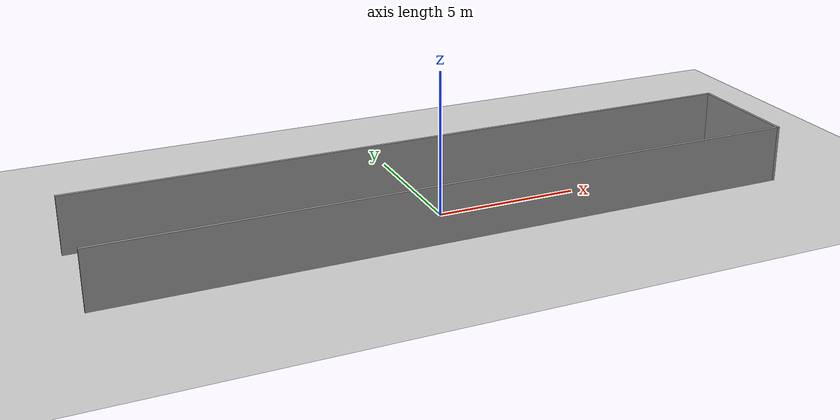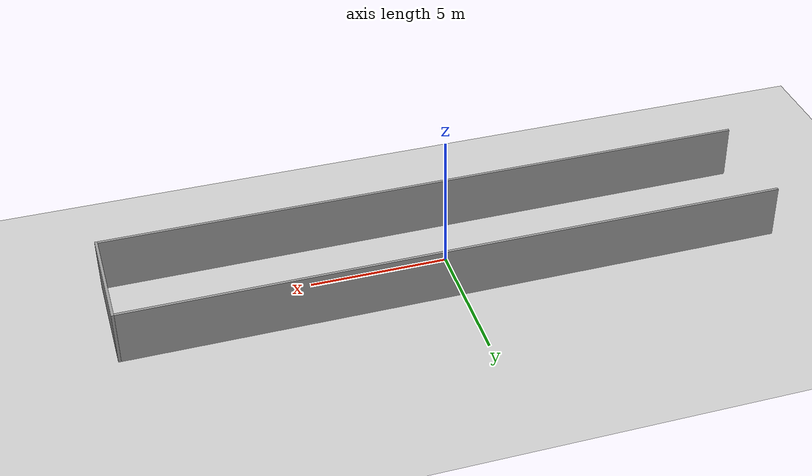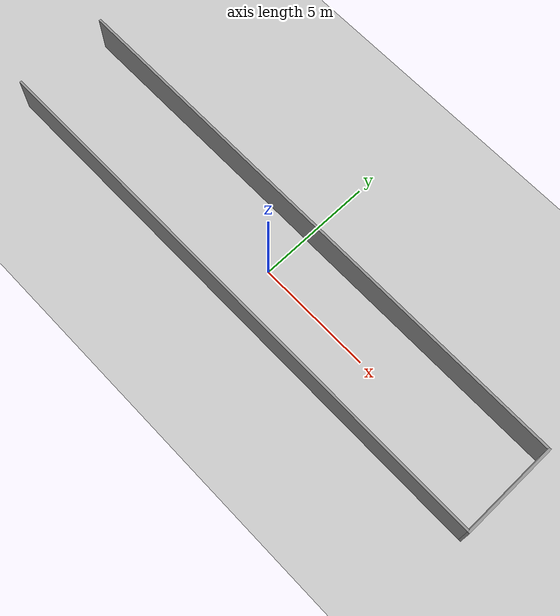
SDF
<sdf version='1.6'>
  <world name='default'>
    <include>
      <uri>model://ground_plane</uri>
    </include>

    <include>
      <uri>model://sun</uri>
    </include>

    <model name='white-wall'>
      <pose frame=''>0 0 0 0 0 0</pose>

      <link name='Wall_0'>
        <collision name='Wall_0_Collision'>
          <geometry>
            <box>
              <size>24 0.1 2</size>
            </box>
          </geometry>
          <pose frame=''>0 0 0 0 -0 0</pose>
          <max_contacts>10</max_contacts>
        </collision>
        <visual name='Wall_0_Visual'>
          <pose frame=''>0 0 0 0 -0 0</pose>
          <geometry>
            <box>
              <size>24 0.1 2</size>
            </box>
          </geometry>
          <material>
            <script>
              <uri>file://media/materials/scripts/gazebo.material</uri>
              <name>Gazebo/Grey</name>
            </script>
            <ambient>1 1 1 1</ambient>
          </material>
          <meta>
            <layer>0</layer>
          </meta>
        </visual>
        <pose frame=''>0 -2.05 1 0 -0 0</pose>
      </link>

      <link name='Wall_1'>
        <collision name='Wall_1_Collision'>
          <geometry>
            <box>
              <size>24 0.1 2</size>
            </box>
          </geometry>
          <pose frame=''>0 0 0 0 -0 0</pose>
          <max_contacts>10</max_contacts>
        </collision>
        <visual name='Wall_1_Visual'>
          <pose frame=''>0 0 0 0 -0 0</pose>
          <geometry>
            <box>
              <size>24 0.1 2</size>
            </box>
          </geometry>
          <material>
            <script>
              <uri>file://media/materials/scripts/gazebo.material</uri>
              <name>Gazebo/Grey</name>
            </script>
            <ambient>1 1 1 1</ambient>
          </material>
          <meta>
            <layer>0</layer>
          </meta>
        </visual>
        <pose frame=''>0 2.05 1 0 -0 0</pose>
      </link>

      <link name='Wall_2'>
        <collision name='Wall_2_Collision'>
          <geometry>
            <box>
              <size>0.1 4.2 2</size>
            </box>
          </geometry>
          <pose frame=''>0 0 0 0 -0 0</pose>
          <max_contacts>10</max_contacts>
        </collision>
        <visual name='Wall_2_Visual'>
          <pose frame=''>0 0 0 0 -0 0</pose>
          <geometry>
            <box>
              <size>0.1 4.2 2</size>
            </box>
          </geometry>
          <material>
            <script>
              <uri>file://media/materials/scripts/gazebo.material</uri>
              <name>Gazebo/Grey</name>
            </script>
            <ambient>1 1 1 1</ambient>
          </material>
          <meta>
            <layer>0</layer>
          </meta>
        </visual>
        <pose frame=''>12.05 0 1 0 -0 0</pose>
      </link>

      <static>1</static>
    </model>

  </world>
</sdf>
